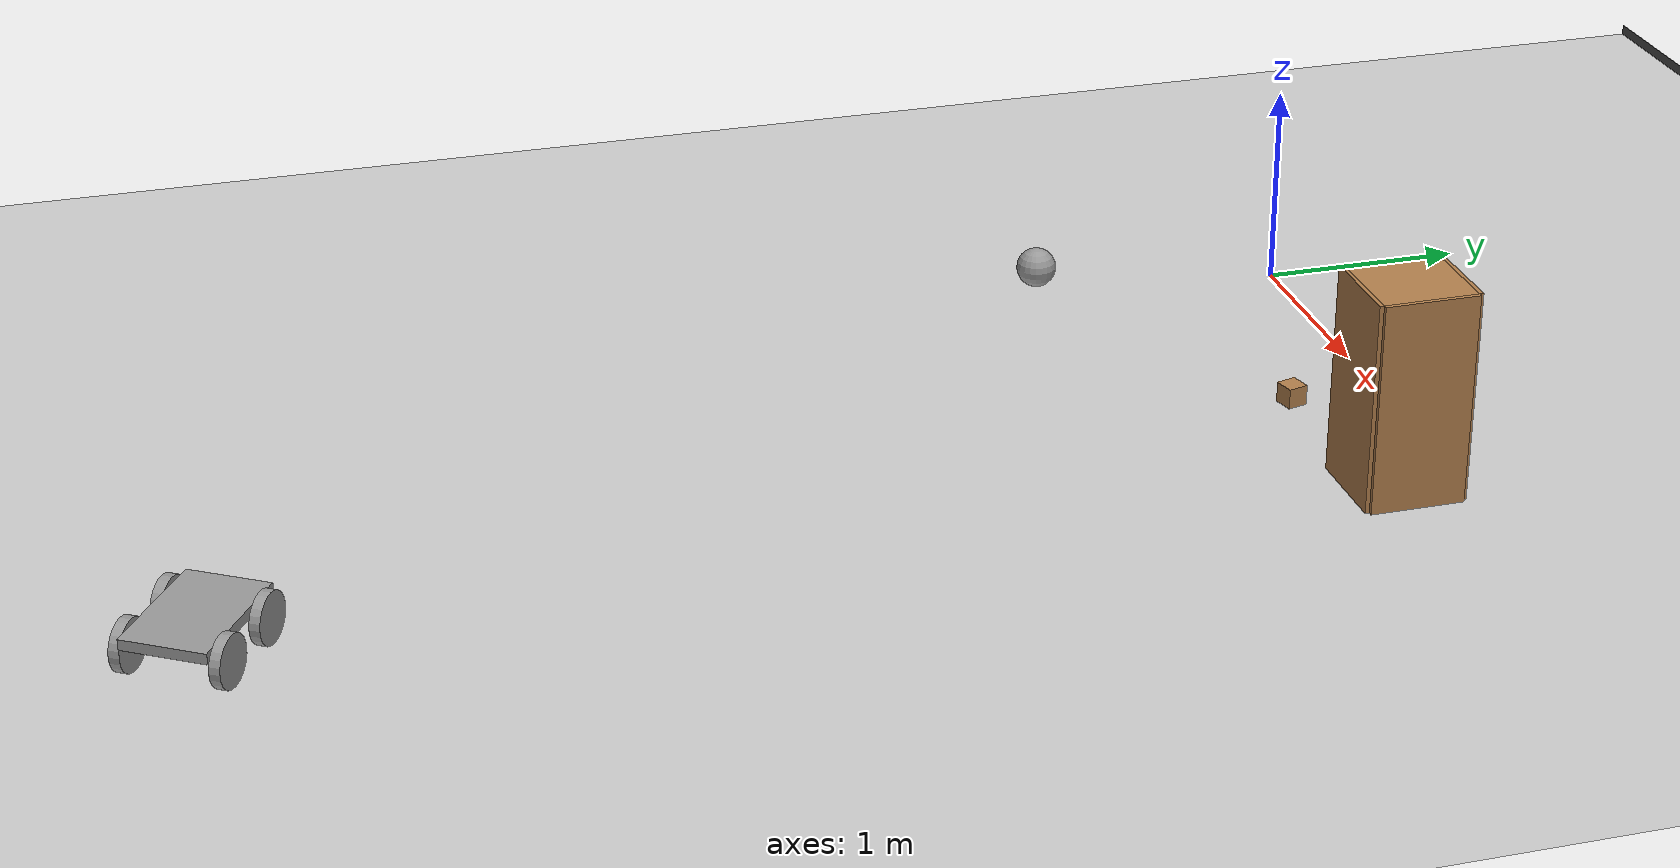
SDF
<sdf version="1.6">
 <world name="firstworld">
  <model name="ground_plane">
   <static>1</static>
   <link name="link">
    <collision name="collision">
     <geometry><plane><normal>0 0 1</normal><size>100 100</size></plane></geometry>
     <surface><friction><ode><mu>100</mu><mu2>50</mu2></ode></friction></surface>
    </collision>
    <visual name="visual">
     <cast_shadows>0</cast_shadows>
     <geometry><plane><normal>0 0 1</normal><size>100 100</size></plane></geometry>
     <material>
      <script><uri>file://media/materials/scripts/gazebo.material</uri><name>Gazebo/Grey</name></script>
     </material>
    </visual>
   </link>
  </model>
  <model name="wood_cube_10cm">
   <link name="link">
    <pose>0 0 0.05 0 -0 0</pose>
    <inertial>
     <mass>0.5167</mass>
     <inertia>
      <ixx>0.000861167</ixx>
      <ixy>0</ixy>
      <ixz>0</ixz>
      <iyy>0.000861167</iyy>
      <iyz>0</iyz>
      <izz>0.000861167</izz>
     </inertia>
    </inertial>
    <collision name="collision">
     <geometry><box><size>0.1 0.1 0.1</size></box></geometry>
     <surface>
      <contact>
       <poissons_ratio>0.347</poissons_ratio>
       <elastic_modulus>8.8e+09</elastic_modulus>
       <ode><kp>100000</kp><kd>100</kd><max_vel>100</max_vel><min_depth>0.001</min_depth></ode>
      </contact>
      <friction>
       <torsional>
        <coefficient>1</coefficient>
        <use_patch_radius>0</use_patch_radius>
        <surface_radius>0.01</surface_radius>
       </torsional>
      </friction>
     </surface>
    </collision>
    <visual name="visual">
     <geometry><box><size>0.1 0.1 0.1</size></box></geometry>
     <material>
      <script><uri>file://media/materials/scripts/gazebo.material</uri><name>Gazebo/Wood</name></script>
     </material>
    </visual>
   </link>
   <pose>1.3695 -0.449503 -0.001013 0 -0 0.25656</pose>
  </model>
  <model name="cabinet">
   <static>1</static>
   <link name="cabinet_bottom_plate">
    <inertial>
     <pose>0 0 -1 0 -0 0</pose>
     <inertia><ixx>2.05</ixx><ixy>0</ixy><ixz>0</ixz><iyy>2.05</iyy><iyz>0</iyz><izz>2.05</izz></inertia>
     <mass>25</mass>
    </inertial>
    <collision name="cabinet_bottom_plate_geom">
     <pose>0 0 0.01 0 -0 0</pose>
     <geometry><box><size>0.45 0.45 0.02</size></box></geometry>
    </collision>
    <visual name="cabinet_bottom_plate_geom_visual">
     <pose>0 0 0.01 0 -0 0</pose>
     <geometry><box><size>0.45 0.45 0.02</size></box></geometry>
     <material>
      <script><uri>file://media/materials/scripts/gazebo.material</uri><name>Gazebo/Wood</name></script>
     </material>
    </visual>
    <collision name="cabinet_bottom_plate_geom_cabinet_back_plate">
     <pose>0.235 0 0.51 0 -0 0</pose>
     <geometry><box><size>0.02 0.45 1.02</size></box></geometry>
    </collision>
    <visual name="cabinet_bottom_plate_geom_cabinet_back_plate_visual">
     <pose>0.235 0 0.51 0 -0 0</pose>
     <geometry><box><size>0.02 0.45 1.02</size></box></geometry>
     <material>
      <script><uri>file://media/materials/scripts/gazebo.material</uri><name>Gazebo/Wood</name></script>
     </material>
    </visual>
    <collision name="cabinet_bottom_plate_geom_cabinet_left_plate">
     <pose>0 0.235 0.51 0 -0 0</pose>
     <geometry><box><size>0.45 0.02 1.02</size></box></geometry>
    </collision>
    <visual name="cabinet_bottom_plate_geom_cabinet_left_plate_visual">
     <pose>0 0.235 0.51 0 -0 0</pose>
     <geometry><box><size>0.45 0.02 1.02</size></box></geometry>
     <material>
      <script><uri>file://media/materials/scripts/gazebo.material</uri><name>Gazebo/Wood</name></script>
     </material>
    </visual>
    <collision name="cabinet_bottom_plate_geom_cabinet_middle_plate">
     <pose>0 0 0.51 0 -0 0</pose>
     <geometry><box><size>0.45 0.45 0.02</size></box></geometry>
    </collision>
    <visual name="cabinet_bottom_plate_geom_cabinet_middle_plate_visual">
     <pose>0 0 0.51 0 -0 0</pose>
     <geometry><box><size>0.45 0.45 0.02</size></box></geometry>
     <material>
      <script><uri>file://media/materials/scripts/gazebo.material</uri><name>Gazebo/Wood</name></script>
     </material>
    </visual>
    <collision name="cabinet_bottom_plate_geom_cabinet_right_plate">
     <pose>0 -0.235 0.51 0 -0 0</pose>
     <geometry><box><size>0.45 0.02 1.02</size></box></geometry>
    </collision>
    <visual name="cabinet_bottom_plate_geom_cabinet_right_plate_visual">
     <pose>0 -0.235 0.51 0 -0 0</pose>
     <geometry><box><size>0.45 0.02 1.02</size></box></geometry>
     <material>
      <script><uri>file://media/materials/scripts/gazebo.material</uri><name>Gazebo/Wood</name></script>
     </material>
    </visual>
    <collision name="cabinet_bottom_plate_geom_cabinet_top_plate">
     <pose>0 0 1.01 0 -0 0</pose>
     <geometry><box><size>0.45 0.45 0.02</size></box></geometry>
    </collision>
    <visual name="cabinet_bottom_plate_geom_cabinet_top_plate_visual">
     <pose>0 0 1.01 0 -0 0</pose>
     <geometry><box><size>0.45 0.45 0.02</size></box></geometry>
     <material>
      <script><uri>file://media/materials/scripts/gazebo.material</uri><name>Gazebo/Wood</name></script>
     </material>
    </visual>
   </link>
   <pose>2.25656 -0.307725 0 0 -0 0</pose>
  </model>
  <model name="asphalt_plane">
   <static>1</static>
   <link name="link">
    <collision name="collision"><geometry><box><size>20 5.1617 0.1</size></box></geometry></collision>
    <visual name="visual">
     <cast_shadows>0</cast_shadows>
     <geometry><box><size>20 5.1617 0.1</size></box></geometry>
     <material>
      <script>
       <uri>model://asphalt_plane/materials/scripts</uri>
       <uri>model://asphalt_plane/materials/textures</uri>
       <name>vrc/asphalt</name>
      </script>
     </material>
    </visual>
   </link>
   <pose>-0.173084 10.6876 0 0 -0 0</pose>
  </model>
  <model name="mybot_0">
   <link name="link_0">
    <pose>0 0 0.056 0 -0 0</pose>
    <inertial>
     <mass>1</mass>
     <inertia>
      <ixx>0.166667</ixx>
      <ixy>0</ixy>
      <ixz>0</ixz>
      <iyy>0.166667</iyy>
      <iyz>0</iyz>
      <izz>0.166667</izz>
     </inertia>
    </inertial>
    <visual name="visual">
     <geometry><box><size>0.6 0.4 0.05</size></box></geometry>
     <material>
      <lighting>1</lighting>
      <script><uri>file://media/materials/scripts/gazebo.material</uri><name>Gazebo/Grey</name></script>
      <ambient>0.3 0.3 0.3 1</ambient>
      <diffuse>0.7 0.7 0.7 1</diffuse>
      <specular>0.01 0.01 0.01 1</specular>
      <emissive>0 0 0 1</emissive>
      <shader type="vertex"><normal_map>__default__</normal_map></shader>
     </material>
    </visual>
    <collision name="collision">
     <geometry><box><size>0.6 0.4 0.05</size></box></geometry>
     <surface>
      <friction>
       <ode><mu>1</mu><mu2>1</mu2><fdir1>0 0 0</fdir1><slip1>0</slip1><slip2>0</slip2></ode>
       <torsional>
        <coefficient>1</coefficient>
        <patch_radius>0</patch_radius>
        <surface_radius>0</surface_radius>
        <use_patch_radius>1</use_patch_radius>
        <ode><slip>0</slip></ode>
       </torsional>
      </friction>
      <bounce><restitution_coefficient>0</restitution_coefficient><threshold>1e+06</threshold></bounce>
      <contact>
       <collide_without_contact>0</collide_without_contact>
       <collide_without_contact_bitmask>1</collide_without_contact_bitmask>
       <collide_bitmask>1</collide_bitmask>
       <ode>
        <soft_cfm>0</soft_cfm>
        <soft_erp>0.2</soft_erp>
        <kp>1e+13</kp>
        <kd>1</kd>
        <max_vel>0.01</max_vel>
        <min_depth>0</min_depth>
       </ode>
       <bullet>
        <split_impulse>1</split_impulse>
        <split_impulse_penetration_threshold>-0.01</split_impulse_penetration_threshold>
        <soft_cfm>0</soft_cfm>
        <soft_erp>0.2</soft_erp>
        <kp>1e+13</kp>
        <kd>1</kd>
       </bullet>
      </contact>
     </surface>
    </collision>
   </link>
   <link name="link_1">
    <pose>-0.18 -0.225096 -0.014 1.57 -0 0</pose>
    <inertial>
     <mass>1</mass>
     <inertia><ixx>0.145833</ixx><ixy>0</ixy><ixz>0</ixz><iyy>0.145833</iyy><iyz>0</iyz><izz>0.125</izz></inertia>
    </inertial>
    <visual name="visual">
     <geometry><cylinder><radius>0.12</radius><length>0.05</length></cylinder></geometry>
     <material>
      <lighting>1</lighting>
      <script><uri>file://media/materials/scripts/gazebo.material</uri><name>Gazebo/Grey</name></script>
      <ambient>0.3 0.3 0.3 1</ambient>
      <diffuse>0.7 0.7 0.7 1</diffuse>
      <specular>0.01 0.01 0.01 1</specular>
      <emissive>0 0 0 1</emissive>
      <shader type="vertex"><normal_map>__default__</normal_map></shader>
     </material>
    </visual>
    <collision name="collision">
     <geometry><cylinder><radius>0.12</radius><length>0.05</length></cylinder></geometry>
     <surface>
      <friction>
       <ode><mu>1</mu><mu2>1</mu2><fdir1>0 0 0</fdir1><slip1>0</slip1><slip2>0</slip2></ode>
       <torsional>
        <coefficient>1</coefficient>
        <patch_radius>0</patch_radius>
        <surface_radius>0</surface_radius>
        <use_patch_radius>1</use_patch_radius>
        <ode><slip>0</slip></ode>
       </torsional>
      </friction>
      <bounce><restitution_coefficient>0</restitution_coefficient><threshold>1e+06</threshold></bounce>
      <contact>
       <collide_without_contact>0</collide_without_contact>
       <collide_without_contact_bitmask>1</collide_without_contact_bitmask>
       <collide_bitmask>1</collide_bitmask>
       <ode>
        <soft_cfm>0</soft_cfm>
        <soft_erp>0.2</soft_erp>
        <kp>1e+13</kp>
        <kd>1</kd>
        <max_vel>0.01</max_vel>
        <min_depth>0</min_depth>
       </ode>
       <bullet>
        <split_impulse>1</split_impulse>
        <split_impulse_penetration_threshold>-0.01</split_impulse_penetration_threshold>
        <soft_cfm>0</soft_cfm>
        <soft_erp>0.2</soft_erp>
        <kp>1e+13</kp>
        <kd>1</kd>
       </bullet>
      </contact>
     </surface>
    </collision>
   </link>
   <link name="link_1_clone">
    <pose>-0.18 0.225096 -0.014 1.57 -0 0</pose>
    <inertial>
     <mass>1</mass>
     <inertia><ixx>0.145833</ixx><ixy>0</ixy><ixz>0</ixz><iyy>0.145833</iyy><iyz>0</iyz><izz>0.125</izz></inertia>
    </inertial>
    <visual name="visual">
     <geometry><cylinder><radius>0.12</radius><length>0.05</length></cylinder></geometry>
     <material>
      <lighting>1</lighting>
      <script><uri>file://media/materials/scripts/gazebo.material</uri><name>Gazebo/Grey</name></script>
      <ambient>0.3 0.3 0.3 1</ambient>
      <diffuse>0.7 0.7 0.7 1</diffuse>
      <specular>0.01 0.01 0.01 1</specular>
      <emissive>0 0 0 1</emissive>
      <shader type="vertex"><normal_map>__default__</normal_map></shader>
     </material>
    </visual>
    <collision name="collision">
     <geometry><cylinder><radius>0.12</radius><length>0.05</length></cylinder></geometry>
     <surface>
      <friction>
       <ode><mu>1</mu><mu2>1</mu2><fdir1>0 0 0</fdir1><slip1>0</slip1><slip2>0</slip2></ode>
       <torsional>
        <coefficient>1</coefficient>
        <patch_radius>0</patch_radius>
        <surface_radius>0</surface_radius>
        <use_patch_radius>1</use_patch_radius>
        <ode><slip>0</slip></ode>
       </torsional>
      </friction>
      <bounce><restitution_coefficient>0</restitution_coefficient><threshold>1e+06</threshold></bounce>
      <contact>
       <collide_without_contact>0</collide_without_contact>
       <collide_without_contact_bitmask>1</collide_without_contact_bitmask>
       <collide_bitmask>1</collide_bitmask>
       <ode>
        <soft_cfm>0</soft_cfm>
        <soft_erp>0.2</soft_erp>
        <kp>1e+13</kp>
        <kd>1</kd>
        <max_vel>0.01</max_vel>
        <min_depth>0</min_depth>
       </ode>
       <bullet>
        <split_impulse>1</split_impulse>
        <split_impulse_penetration_threshold>-0.01</split_impulse_penetration_threshold>
        <soft_cfm>0</soft_cfm>
        <soft_erp>0.2</soft_erp>
        <kp>1e+13</kp>
        <kd>1</kd>
       </bullet>
      </contact>
     </surface>
    </collision>
   </link>
   <link name="link_1_clone_0">
    <pose>0.18 -0.225096 -0.014 1.57 -0 0</pose>
    <inertial>
     <mass>1</mass>
     <inertia><ixx>0.145833</ixx><ixy>0</ixy><ixz>0</ixz><iyy>0.145833</iyy><iyz>0</iyz><izz>0.125</izz></inertia>
    </inertial>
    <visual name="visual">
     <geometry><cylinder><radius>0.12</radius><length>0.05</length></cylinder></geometry>
     <material>
      <lighting>1</lighting>
      <script><uri>file://media/materials/scripts/gazebo.material</uri><name>Gazebo/Grey</name></script>
      <ambient>0.3 0.3 0.3 1</ambient>
      <diffuse>0.7 0.7 0.7 1</diffuse>
      <specular>0.01 0.01 0.01 1</specular>
      <emissive>0 0 0 1</emissive>
      <shader type="vertex"><normal_map>__default__</normal_map></shader>
     </material>
    </visual>
    <collision name="collision">
     <geometry><cylinder><radius>0.12</radius><length>0.05</length></cylinder></geometry>
     <surface>
      <friction>
       <ode><mu>1</mu><mu2>1</mu2><fdir1>0 0 0</fdir1><slip1>0</slip1><slip2>0</slip2></ode>
       <torsional>
        <coefficient>1</coefficient>
        <patch_radius>0</patch_radius>
        <surface_radius>0</surface_radius>
        <use_patch_radius>1</use_patch_radius>
        <ode><slip>0</slip></ode>
       </torsional>
      </friction>
      <bounce><restitution_coefficient>0</restitution_coefficient><threshold>1e+06</threshold></bounce>
      <contact>
       <collide_without_contact>0</collide_without_contact>
       <collide_without_contact_bitmask>1</collide_without_contact_bitmask>
       <collide_bitmask>1</collide_bitmask>
       <ode>
        <soft_cfm>0</soft_cfm>
        <soft_erp>0.2</soft_erp>
        <kp>1e+13</kp>
        <kd>1</kd>
        <max_vel>0.01</max_vel>
        <min_depth>0</min_depth>
       </ode>
       <bullet>
        <split_impulse>1</split_impulse>
        <split_impulse_penetration_threshold>-0.01</split_impulse_penetration_threshold>
        <soft_cfm>0</soft_cfm>
        <soft_erp>0.2</soft_erp>
        <kp>1e+13</kp>
        <kd>1</kd>
       </bullet>
      </contact>
     </surface>
    </collision>
   </link>
   <link name="link_1_clone_1">
    <pose>0.18 0.225096 -0.014 1.57 -0 0</pose>
    <inertial>
     <mass>1</mass>
     <inertia><ixx>0.145833</ixx><ixy>0</ixy><ixz>0</ixz><iyy>0.145833</iyy><iyz>0</iyz><izz>0.125</izz></inertia>
    </inertial>
    <visual name="visual">
     <geometry><cylinder><radius>0.12</radius><length>0.05</length></cylinder></geometry>
     <material>
      <lighting>1</lighting>
      <script><uri>file://media/materials/scripts/gazebo.material</uri><name>Gazebo/Grey</name></script>
      <ambient>0.3 0.3 0.3 1</ambient>
      <diffuse>0.7 0.7 0.7 1</diffuse>
      <specular>0.01 0.01 0.01 1</specular>
      <emissive>0 0 0 1</emissive>
      <shader type="vertex"><normal_map>__default__</normal_map></shader>
     </material>
    </visual>
    <collision name="collision">
     <geometry><cylinder><radius>0.12</radius><length>0.05</length></cylinder></geometry>
     <surface>
      <friction>
       <ode><mu>1</mu><mu2>1</mu2><fdir1>0 0 0</fdir1><slip1>0</slip1><slip2>0</slip2></ode>
       <torsional>
        <coefficient>1</coefficient>
        <patch_radius>0</patch_radius>
        <surface_radius>0</surface_radius>
        <use_patch_radius>1</use_patch_radius>
        <ode><slip>0</slip></ode>
       </torsional>
      </friction>
      <bounce><restitution_coefficient>0</restitution_coefficient><threshold>1e+06</threshold></bounce>
      <contact>
       <collide_without_contact>0</collide_without_contact>
       <collide_without_contact_bitmask>1</collide_without_contact_bitmask>
       <collide_bitmask>1</collide_bitmask>
       <ode>
        <soft_cfm>0</soft_cfm>
        <soft_erp>0.2</soft_erp>
        <kp>1e+13</kp>
        <kd>1</kd>
        <max_vel>0.01</max_vel>
        <min_depth>0</min_depth>
       </ode>
       <bullet>
        <split_impulse>1</split_impulse>
        <split_impulse_penetration_threshold>-0.01</split_impulse_penetration_threshold>
        <soft_cfm>0</soft_cfm>
        <soft_erp>0.2</soft_erp>
        <kp>1e+13</kp>
        <kd>1</kd>
       </bullet>
      </contact>
     </surface>
    </collision>
   </link>
   <joint name="link_0_JOINT_1" type="revolute">
    <parent>link_0</parent>
    <child>link_1_clone</child>
    <axis>
     <xyz>0 0 1</xyz>
     <use_parent_model_frame>0</use_parent_model_frame>
     <limit>
      <lower>-1.79769e+308</lower>
      <upper>1.79769e+308</upper>
      <effort>-1</effort>
      <velocity>-1</velocity>
     </limit>
     <dynamics>
      <spring_reference>0</spring_reference>
      <spring_stiffness>0</spring_stiffness>
      <damping>0</damping>
     </dynamics>
    </axis>
    <physics>
     <ode><limit><cfm>0</cfm><erp>0.2</erp></limit><suspension><cfm>0</cfm><erp>0.2</erp></suspension></ode>
    </physics>
   </joint>
   <joint name="link_0_JOINT_2" type="revolute">
    <parent>link_0</parent>
    <child>link_1</child>
    <axis>
     <xyz>0 0 1</xyz>
     <use_parent_model_frame>0</use_parent_model_frame>
     <limit>
      <lower>-1.79769e+308</lower>
      <upper>1.79769e+308</upper>
      <effort>-1</effort>
      <velocity>-1</velocity>
     </limit>
     <dynamics>
      <spring_reference>0</spring_reference>
      <spring_stiffness>0</spring_stiffness>
      <damping>0</damping>
     </dynamics>
    </axis>
    <physics>
     <ode><limit><cfm>0</cfm><erp>0.2</erp></limit><suspension><cfm>0</cfm><erp>0.2</erp></suspension></ode>
    </physics>
   </joint>
   <joint name="link_0_JOINT_3" type="revolute">
    <parent>link_0</parent>
    <child>link_1_clone_0</child>
    <axis>
     <xyz>0 0 1</xyz>
     <use_parent_model_frame>0</use_parent_model_frame>
     <limit>
      <lower>-1.79769e+308</lower>
      <upper>1.79769e+308</upper>
      <effort>-1</effort>
      <velocity>-1</velocity>
     </limit>
     <dynamics>
      <spring_reference>0</spring_reference>
      <spring_stiffness>0</spring_stiffness>
      <damping>0</damping>
     </dynamics>
    </axis>
    <physics>
     <ode><limit><cfm>0</cfm><erp>0.2</erp></limit><suspension><cfm>0</cfm><erp>0.2</erp></suspension></ode>
    </physics>
   </joint>
   <joint name="link_0_JOINT_4" type="revolute">
    <parent>link_0</parent>
    <child>link_1_clone_1</child>
    <axis>
     <xyz>0 0 1</xyz>
     <use_parent_model_frame>0</use_parent_model_frame>
     <limit>
      <lower>-1.79769e+308</lower>
      <upper>1.79769e+308</upper>
      <effort>-1</effort>
      <velocity>-1</velocity>
     </limit>
     <dynamics>
      <spring_reference>0</spring_reference>
      <spring_stiffness>0</spring_stiffness>
      <damping>0</damping>
     </dynamics>
    </axis>
    <physics>
     <ode><limit><cfm>0</cfm><erp>0.2</erp></limit><suspension><cfm>0</cfm><erp>0.2</erp></suspension></ode>
    </physics>
   </joint>
   <static>0</static>
   <pose>2.29467 -5.66393 0.13402 0 0 -0.569013</pose>
  </model>
  <model name="my_ball_0">
   <link name="link_0">
    <pose>0.022282 -0.243272 0.373 0 -0 0</pose>
    <inertial>
     <mass>1</mass>
     <inertia><ixx>0.1</ixx><ixy>0</ixy><ixz>0</ixz><iyy>0.1</iyy><iyz>0</iyz><izz>0.1</izz></inertia>
    </inertial>
    <visual name="ModelPreview_5::link_0::visual_1">
     <geometry><sphere><radius>0.1</radius></sphere></geometry>
     <material>
      <lighting>1</lighting>
      <script><uri>file://media/materials/scripts/gazebo.material</uri><name>Gazebo/Grey</name></script>
      <ambient>1 1 1 1</ambient>
      <diffuse>1 1 1 1</diffuse>
      <specular>1 1 1 1</specular>
      <emissive>1 1 1 1</emissive>
      <shader type="vertex"><normal_map>__default__</normal_map></shader>
     </material>
    </visual>
    <visual name="visual">
     <geometry><sphere><radius>0.1</radius></sphere></geometry>
     <material>
      <lighting>1</lighting>
      <script><uri>file://media/materials/scripts/gazebo.material</uri><name>Gazebo/Grey</name></script>
      <ambient>1 1 1 1</ambient>
      <diffuse>1 1 1 1</diffuse>
      <specular>1 1 1 1</specular>
      <emissive>1 1 1 1</emissive>
      <shader type="vertex"><normal_map>__default__</normal_map></shader>
     </material>
    </visual>
    <collision name="collision">
     <geometry><sphere><radius>0.1</radius></sphere></geometry>
     <surface>
      <friction>
       <ode><mu>1</mu><mu2>1</mu2><fdir1>0 0 0</fdir1><slip1>0</slip1><slip2>0</slip2></ode>
       <torsional>
        <coefficient>1</coefficient>
        <patch_radius>0</patch_radius>
        <surface_radius>0</surface_radius>
        <use_patch_radius>1</use_patch_radius>
        <ode><slip>0</slip></ode>
       </torsional>
      </friction>
      <bounce><restitution_coefficient>0</restitution_coefficient><threshold>1e+06</threshold></bounce>
      <contact>
       <collide_without_contact>0</collide_without_contact>
       <collide_without_contact_bitmask>1</collide_without_contact_bitmask>
       <collide_bitmask>1</collide_bitmask>
       <ode>
        <soft_cfm>0</soft_cfm>
        <soft_erp>0.2</soft_erp>
        <kp>1e+13</kp>
        <kd>1</kd>
        <max_vel>0.01</max_vel>
        <min_depth>0</min_depth>
       </ode>
       <bullet>
        <split_impulse>1</split_impulse>
        <split_impulse_penetration_threshold>-0.01</split_impulse_penetration_threshold>
        <soft_cfm>0</soft_cfm>
        <soft_erp>0.2</soft_erp>
        <kp>1e+13</kp>
        <kd>1</kd>
       </bullet>
      </contact>
     </surface>
    </collision>
   </link>
   <static>0</static>
   <pose>-0.249667 -0.953329 -0.273 0 -0 0</pose>
  </model>
 </world>
</sdf>
